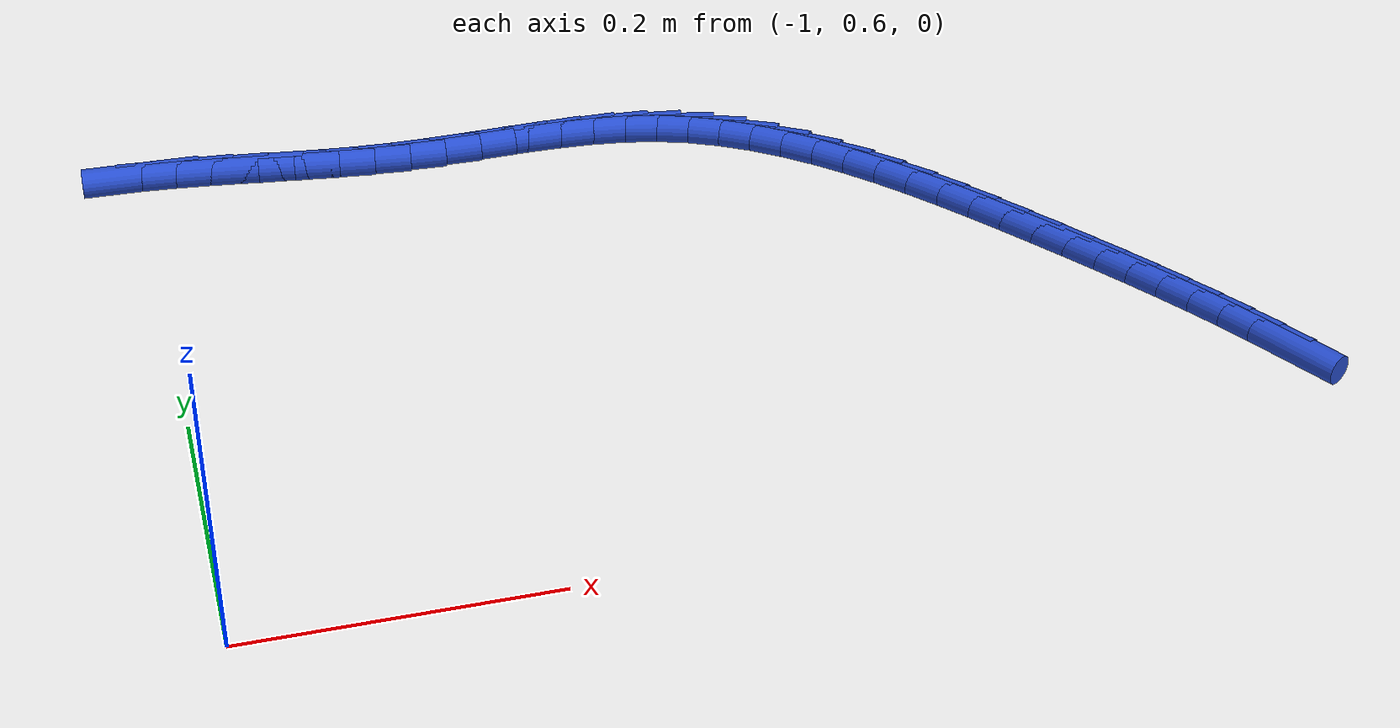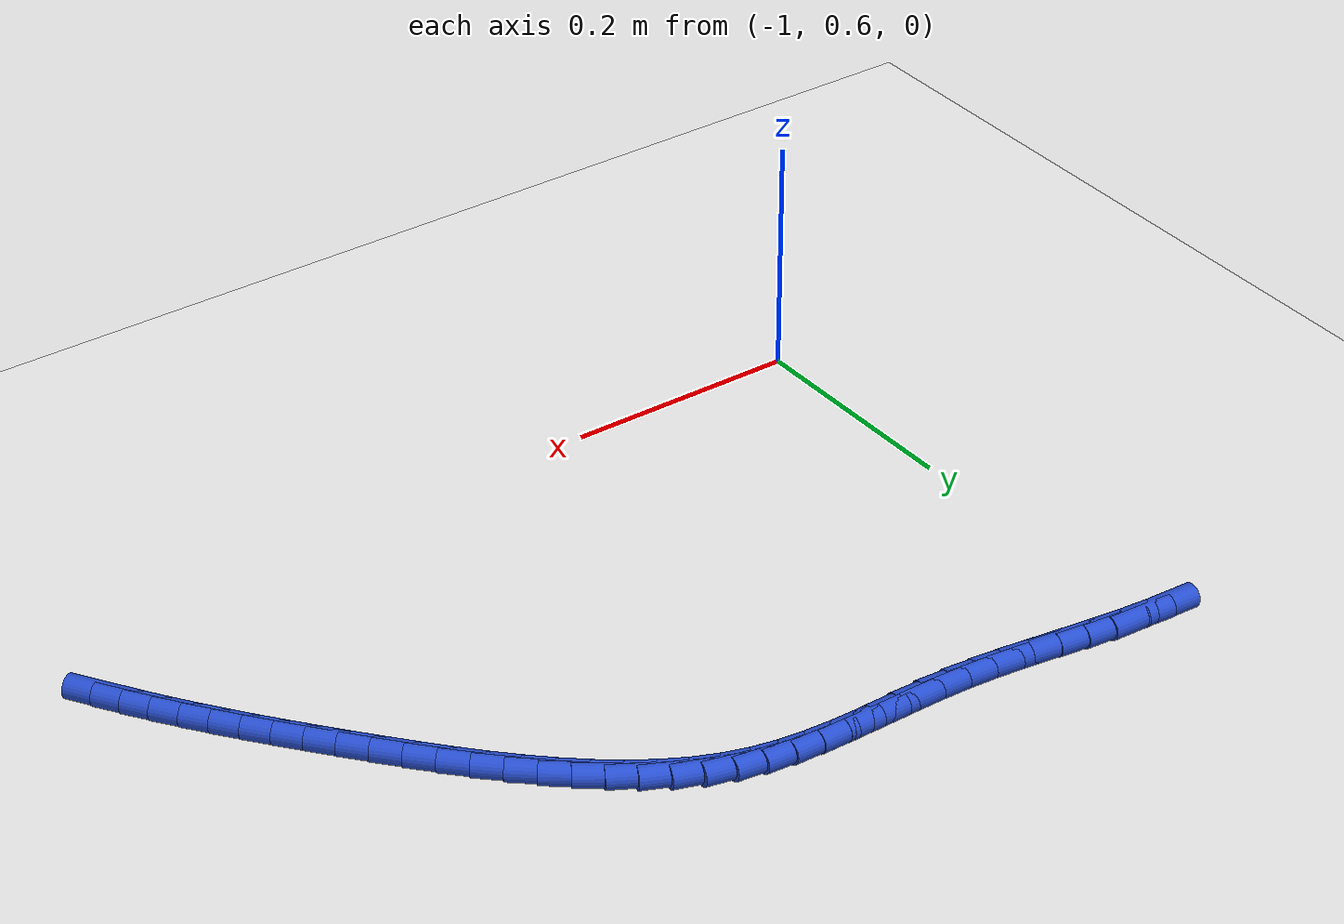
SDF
<sdf version="1.6">
 <world name="default">
  <model name="ground_plane">
   <static>1</static>
   <link name="link">
    <collision name="collision">
     <geometry><plane><normal>0 0 1</normal><size>100 100</size></plane></geometry>
     <surface><friction><ode><mu>100</mu><mu2>50</mu2></ode></friction></surface>
    </collision>
    <visual name="visual">
     <cast_shadows>0</cast_shadows>
     <geometry><plane><normal>0 0 1</normal><size>100 100</size></plane></geometry>
     <material>
      <script><uri>file://media/materials/scripts/gazebo.material</uri><name>Gazebo/WhiteGlow</name></script>
     </material>
    </visual>
   </link>
  </model>
  <model name="line">
   <link name="link_33">
    <pose>-0.3097885913738731 0.7030657781156517 0.01 0 1.57 -1.002941183865782</pose>
    <collision name="collision">
     <geometry><cylinder><radius>0.01</radius><length>0.08</length></cylinder></geometry>
    </collision>
    <visual name="visual">
     <material>
      <script><name>Gazebo/Blue</name><uri>file://media/materials/scripts/gazebo.material</uri></script>
     </material>
     <geometry><cylinder><radius>0.01</radius><length>0.08</length></cylinder></geometry>
    </visual>
   </link>
   <link name="link_34">
    <pose>-0.32237110842961614 0.7227892409744509 0.01 0 1.57 -0.9790506794853427</pose>
    <collision name="collision">
     <geometry><cylinder><radius>0.01</radius><length>0.08</length></cylinder></geometry>
    </collision>
    <visual name="visual">
     <material>
      <script><name>Gazebo/Blue</name><uri>file://media/materials/scripts/gazebo.material</uri></script>
     </material>
     <geometry><cylinder><radius>0.01</radius><length>0.08</length></cylinder></geometry>
    </visual>
   </link>
   <link name="link_35">
    <pose>-0.3354563526271495 0.7422588146901686 0.01 0 1.57 -0.957547431150505</pose>
    <collision name="collision">
     <geometry><cylinder><radius>0.01</radius><length>0.08</length></cylinder></geometry>
    </collision>
    <visual name="visual">
     <material>
      <script><name>Gazebo/Blue</name><uri>file://media/materials/scripts/gazebo.material</uri></script>
     </material>
     <geometry><cylinder><radius>0.01</radius><length>0.08</length></cylinder></geometry>
    </visual>
   </link>
   <link name="link_36">
    <pose>-0.34901754179778793 0.7615282771529474 0.01 0 1.57 -0.9384990975968414</pose>
    <collision name="collision">
     <geometry><cylinder><radius>0.01</radius><length>0.08</length></cylinder></geometry>
    </collision>
    <visual name="visual">
     <material>
      <script><name>Gazebo/Blue</name><uri>file://media/materials/scripts/gazebo.material</uri></script>
     </material>
     <geometry><cylinder><radius>0.01</radius><length>0.08</length></cylinder></geometry>
    </visual>
   </link>
   <link name="link_37">
    <pose>-0.3630278937728464 0.7806514062529294 0.01 0 1.57 -0.9219426738590444</pose>
    <collision name="collision">
     <geometry><cylinder><radius>0.01</radius><length>0.08</length></cylinder></geometry>
    </collision>
    <visual name="visual">
     <material>
      <script><name>Gazebo/Blue</name><uri>file://media/materials/scripts/gazebo.material</uri></script>
     </material>
     <geometry><cylinder><radius>0.01</radius><length>0.08</length></cylinder></geometry>
    </visual>
   </link>
   <link name="link_38">
    <pose>-0.3774606263836391 0.7996819798802559 0.01 0 1.57 -0.9078879918364929</pose>
    <collision name="collision">
     <geometry><cylinder><radius>0.01</radius><length>0.08</length></cylinder></geometry>
    </collision>
    <visual name="visual">
     <material>
      <script><name>Gazebo/Blue</name><uri>file://media/materials/scripts/gazebo.material</uri></script>
     </material>
     <geometry><cylinder><radius>0.01</radius><length>0.08</length></cylinder></geometry>
    </visual>
   </link>
   <link name="link_39">
    <pose>-0.392288957461481 0.8186737759250691 0.01 0 1.57 -0.8963213827988467</pose>
    <collision name="collision">
     <geometry><cylinder><radius>0.01</radius><length>0.08</length></cylinder></geometry>
    </collision>
    <visual name="visual">
     <material>
      <script><name>Gazebo/Blue</name><uri>file://media/materials/scripts/gazebo.material</uri></script>
     </material>
     <geometry><cylinder><radius>0.01</radius><length>0.08</length></cylinder></geometry>
    </visual>
   </link>
   <link name="link_40">
    <pose>-0.40748610483768677 0.8376805722775111 0.01 0 1.57 -0.8872092454545766</pose>
    <collision name="collision">
     <geometry><cylinder><radius>0.01</radius><length>0.08</length></cylinder></geometry>
    </collision>
    <visual name="visual">
     <material>
      <script><name>Gazebo/Blue</name><uri>file://media/materials/scripts/gazebo.material</uri></script>
     </material>
     <geometry><cylinder><radius>0.01</radius><length>0.08</length></cylinder></geometry>
    </visual>
   </link>
   <link name="link_41">
    <pose>-0.42302528634357095 0.8567561468277236 0.01 0 1.57 -0.8797433199122261</pose>
    <collision name="collision">
     <geometry><cylinder><radius>0.01</radius><length>0.08</length></cylinder></geometry>
    </collision>
    <visual name="visual">
     <material>
      <script><name>Gazebo/Blue</name><uri>file://media/materials/scripts/gazebo.material</uri></script>
     </material>
     <geometry><cylinder><radius>0.01</radius><length>0.08</length></cylinder></geometry>
    </visual>
   </link>
   <link name="link_42">
    <pose>-0.4388851222924729 0.8759311966488835 0.01 0 1.57 -0.8683331694966139</pose>
    <collision name="collision">
     <geometry><cylinder><radius>0.01</radius><length>0.08</length></cylinder></geometry>
    </collision>
    <visual name="visual">
     <material>
      <script><name>Gazebo/Blue</name><uri>file://media/materials/scripts/gazebo.material</uri></script>
     </material>
     <geometry><cylinder><radius>0.01</radius><length>0.08</length></cylinder></geometry>
    </visual>
   </link>
   <link name="link_43">
    <pose>-0.45508385393727074 0.8950671477922065 0.01 0 1.57 -0.8504401230253983</pose>
    <collision name="collision">
     <geometry><cylinder><radius>0.01</radius><length>0.08</length></cylinder></geometry>
    </collision>
    <visual name="visual">
     <material>
      <script><name>Gazebo/Blue</name><uri>file://media/materials/scripts/gazebo.material</uri></script>
     </material>
     <geometry><cylinder><radius>0.01</radius><length>0.08</length></cylinder></geometry>
    </visual>
   </link>
   <link name="link_44">
    <pose>-0.47165736141588394 0.9139500683761572 0.01 0 1.57 -0.8258104740875727</pose>
    <collision name="collision">
     <geometry><cylinder><radius>0.01</radius><length>0.08</length></cylinder></geometry>
    </collision>
    <visual name="visual">
     <material>
      <script><name>Gazebo/Blue</name><uri>file://media/materials/scripts/gazebo.material</uri></script>
     </material>
     <geometry><cylinder><radius>0.01</radius><length>0.08</length></cylinder></geometry>
    </visual>
   </link>
   <link name="link_45">
    <pose>-0.4886416055428532 0.9323656818475615 0.01 0 1.57 -0.7940169877237658</pose>
    <collision name="collision">
     <geometry><cylinder><radius>0.01</radius><length>0.08</length></cylinder></geometry>
    </collision>
    <visual name="visual">
     <material>
      <script><name>Gazebo/Blue</name><uri>file://media/materials/scripts/gazebo.material</uri></script>
     </material>
     <geometry><cylinder><radius>0.01</radius><length>0.08</length></cylinder></geometry>
    </visual>
   </link>
   <link name="link_46">
    <pose>-0.5060725471327198 0.9500997116532452 0.01 0 1.57 -0.754461978098026</pose>
    <collision name="collision">
     <geometry><cylinder><radius>0.01</radius><length>0.08</length></cylinder></geometry>
    </collision>
    <visual name="visual">
     <material>
      <script><name>Gazebo/Blue</name><uri>file://media/materials/scripts/gazebo.material</uri></script>
     </material>
     <geometry><cylinder><radius>0.01</radius><length>0.08</length></cylinder></geometry>
    </visual>
   </link>
   <link name="link_47">
    <pose>-0.5239861470000243 0.9669378812400347 0.01 0 1.57 -0.7064011280596505</pose>
    <collision name="collision">
     <geometry><cylinder><radius>0.01</radius><length>0.08</length></cylinder></geometry>
    </collision>
    <visual name="visual">
     <material>
      <script><name>Gazebo/Blue</name><uri>file://media/materials/scripts/gazebo.material</uri></script>
     </material>
     <geometry><cylinder><radius>0.01</radius><length>0.08</length></cylinder></geometry>
    </visual>
   </link>
   <link name="link_48">
    <pose>-0.5424183659593079 0.9826659140547551 0.01 0 1.57 -0.6489902450254843</pose>
    <collision name="collision">
     <geometry><cylinder><radius>0.01</radius><length>0.08</length></cylinder></geometry>
    </collision>
    <visual name="visual">
     <material>
      <script><name>Gazebo/Blue</name><uri>file://media/materials/scripts/gazebo.material</uri></script>
     </material>
     <geometry><cylinder><radius>0.01</radius><length>0.08</length></cylinder></geometry>
    </visual>
   </link>
   <link name="link_49">
    <pose>-0.5614051648251114 0.9970695335442326 0.01 0 1.57 -0.5813737888308368</pose>
    <collision name="collision">
     <geometry><cylinder><radius>0.01</radius><length>0.08</length></cylinder></geometry>
    </collision>
    <visual name="visual">
     <material>
      <script><name>Gazebo/Blue</name><uri>file://media/materials/scripts/gazebo.material</uri></script>
     </material>
     <geometry><cylinder><radius>0.01</radius><length>0.08</length></cylinder></geometry>
    </visual>
   </link>
   <link name="link_50">
    <pose>-0.580982504411976 1.0099344631552933 0.01 0 1.57 -0.5028375322086273</pose>
    <collision name="collision">
     <geometry><cylinder><radius>0.01</radius><length>0.08</length></cylinder></geometry>
    </collision>
    <visual name="visual">
     <material>
      <script><name>Gazebo/Blue</name><uri>file://media/materials/scripts/gazebo.material</uri></script>
     </material>
     <geometry><cylinder><radius>0.01</radius><length>0.08</length></cylinder></geometry>
    </visual>
   </link>
   <link name="link_51">
    <pose>-0.6011863455344423 1.0210464263347632 0.01 0 1.57 -0.41304229700559014</pose>
    <collision name="collision">
     <geometry><cylinder><radius>0.01</radius><length>0.08</length></cylinder></geometry>
    </collision>
    <visual name="visual">
     <material>
      <script><name>Gazebo/Blue</name><uri>file://media/materials/scripts/gazebo.material</uri></script>
     </material>
     <geometry><cylinder><radius>0.01</radius><length>0.08</length></cylinder></geometry>
    </visual>
   </link>
   <link name="link_52">
    <pose>-0.6220526490070517 1.030191146529468 0.01 0 1.57 -0.3123310548744103</pose>
    <collision name="collision">
     <geometry><cylinder><radius>0.01</radius><length>0.08</length></cylinder></geometry>
    </collision>
    <visual name="visual">
     <material>
      <script><name>Gazebo/Blue</name><uri>file://media/materials/scripts/gazebo.material</uri></script>
     </material>
     <geometry><cylinder><radius>0.01</radius><length>0.08</length></cylinder></geometry>
    </visual>
   </link>
   <link name="link_53">
    <pose>-0.6436173672672828 1.0371543870281485 0.01 0 1.57 -0.20803774556017843</pose>
    <collision name="collision">
     <geometry><cylinder><radius>0.01</radius><length>0.08</length></cylinder></geometry>
    </collision>
    <visual name="visual">
     <material>
      <script><name>Gazebo/Blue</name><uri>file://media/materials/scripts/gazebo.material</uri></script>
     </material>
     <geometry><cylinder><radius>0.01</radius><length>0.08</length></cylinder></geometry>
    </visual>
   </link>
   <link name="link_54">
    <pose>-0.6658883416980451 1.0418556093421882 0.01 0 1.57 -0.1212937171855763</pose>
    <collision name="collision">
     <geometry><cylinder><radius>0.01</radius><length>0.08</length></cylinder></geometry>
    </collision>
    <visual name="visual">
     <material>
      <script><name>Gazebo/Blue</name><uri>file://media/materials/scripts/gazebo.material</uri></script>
     </material>
     <geometry><cylinder><radius>0.01</radius><length>0.08</length></cylinder></geometry>
    </visual>
   </link>
   <link name="link_55">
    <pose>-0.6887825904872125 1.044646236712495 0.01 0 1.57 -0.05624902360117668</pose>
    <collision name="collision">
     <geometry><cylinder><radius>0.01</radius><length>0.08</length></cylinder></geometry>
    </collision>
    <visual name="visual">
     <material>
      <script><name>Gazebo/Blue</name><uri>file://media/materials/scripts/gazebo.material</uri></script>
     </material>
     <geometry><cylinder><radius>0.01</radius><length>0.08</length></cylinder></geometry>
    </visual>
   </link>
   <link name="link_56">
    <pose>-0.7121988235532964 1.045964767842309 0.01 0 1.57 -0.011952883846207981</pose>
    <collision name="collision">
     <geometry><cylinder><radius>0.01</radius><length>0.08</length></cylinder></geometry>
    </collision>
    <visual name="visual">
     <material>
      <script><name>Gazebo/Blue</name><uri>file://media/materials/scripts/gazebo.material</uri></script>
     </material>
     <geometry><cylinder><radius>0.01</radius><length>0.08</length></cylinder></geometry>
    </visual>
   </link>
   <link name="link_57">
    <pose>-0.7360357508148085 1.046249701434869 0.01 0 1.57 0.012839209454055252</pose>
    <collision name="collision">
     <geometry><cylinder><radius>0.01</radius><length>0.08</length></cylinder></geometry>
    </collision>
    <visual name="visual">
     <material>
      <script><name>Gazebo/Blue</name><uri>file://media/materials/scripts/gazebo.material</uri></script>
     </material>
     <geometry><cylinder><radius>0.01</radius><length>0.08</length></cylinder></geometry>
    </visual>
   </link>
   <link name="link_58">
    <pose>-0.7601920821902609 1.0459395361934167 0.01 0 1.57 0.01914744399157125</pose>
    <collision name="collision">
     <geometry><cylinder><radius>0.01</radius><length>0.08</length></cylinder></geometry>
    </collision>
    <visual name="visual">
     <material>
      <script><name>Gazebo/Blue</name><uri>file://media/materials/scripts/gazebo.material</uri></script>
     </material>
     <geometry><cylinder><radius>0.01</radius><length>0.08</length></cylinder></geometry>
    </visual>
   </link>
   <link name="link_59">
    <pose>-0.7845665275981649 1.0454727708211913 0.01 0 1.57 0.007548130158248473</pose>
    <collision name="collision">
     <geometry><cylinder><radius>0.01</radius><length>0.08</length></cylinder></geometry>
    </collision>
    <visual name="visual">
     <material>
      <script><name>Gazebo/Blue</name><uri>file://media/materials/scripts/gazebo.material</uri></script>
     </material>
     <geometry><cylinder><radius>0.01</radius><length>0.08</length></cylinder></geometry>
    </visual>
   </link>
   <link name="link_60">
    <pose>-0.8090577969570325 1.045287904021433 0.01 0 1.57 -0.021848841422465175</pose>
    <collision name="collision">
     <geometry><cylinder><radius>0.01</radius><length>0.08</length></cylinder></geometry>
    </collision>
    <visual name="visual">
     <material>
      <script><name>Gazebo/Blue</name><uri>file://media/materials/scripts/gazebo.material</uri></script>
     </material>
     <geometry><cylinder><radius>0.01</radius><length>0.08</length></cylinder></geometry>
    </visual>
   </link>
   <link name="link_61">
    <pose>-0.8335646001853753 1.0458234344973811 0.01 0 1.57 -0.06450331492207673</pose>
    <collision name="collision">
     <geometry><cylinder><radius>0.01</radius><length>0.08</length></cylinder></geometry>
    </collision>
    <visual name="visual">
     <material>
      <script><name>Gazebo/Blue</name><uri>file://media/materials/scripts/gazebo.material</uri></script>
     </material>
     <geometry><cylinder><radius>0.01</radius><length>0.08</length></cylinder></geometry>
    </visual>
   </link>
   <link name="link_62">
    <pose>-0.8579981906236264 1.0474016715286494 0.01 0 1.57 -0.09980188473148736</pose>
    <collision name="collision">
     <geometry><cylinder><radius>0.01</radius><length>0.08</length></cylinder></geometry>
    </collision>
    <visual name="visual">
     <material>
      <script><name>Gazebo/Blue</name><uri>file://media/materials/scripts/gazebo.material</uri></script>
     </material>
     <geometry><cylinder><radius>0.01</radius><length>0.08</length></cylinder></geometry>
    </visual>
   </link>
   <link name="link_63">
    <pose>-0.8823245922556289 1.0498375852070811 0.01 0 1.57 -0.12212069396544734</pose>
    <collision name="collision">
     <geometry><cylinder><radius>0.01</radius><length>0.08</length></cylinder></geometry>
    </collision>
    <visual name="visual">
     <material>
      <script><name>Gazebo/Blue</name><uri>file://media/materials/scripts/gazebo.material</uri></script>
     </material>
     <geometry><cylinder><radius>0.01</radius><length>0.08</length></cylinder></geometry>
    </visual>
   </link>
   <link name="link_64">
    <pose>-0.9065247743418238 1.0528077078772458 0.01 0 1.57 -0.13147046762292627</pose>
    <collision name="collision">
     <geometry><cylinder><radius>0.01</radius><length>0.08</length></cylinder></geometry>
    </collision>
    <visual name="visual">
     <material>
      <script><name>Gazebo/Blue</name><uri>file://media/materials/scripts/gazebo.material</uri></script>
     </material>
     <geometry><cylinder><radius>0.01</radius><length>0.08</length></cylinder></geometry>
    </visual>
   </link>
   <link name="link_65">
    <pose>-0.9305797064842276 1.0559885687197166 0.01 0 1.57 -0.1277246841388082</pose>
    <collision name="collision">
     <geometry><cylinder><radius>0.01</radius><length>0.08</length></cylinder></geometry>
    </collision>
    <visual name="visual">
     <material>
      <script><name>Gazebo/Blue</name><uri>file://media/materials/scripts/gazebo.material</uri></script>
     </material>
     <geometry><cylinder><radius>0.01</radius><length>0.08</length></cylinder></geometry>
    </visual>
   </link>
   <link name="link_66">
    <pose>-0.9544703582848556 1.0590566969150663 0.01 0 1.57 -0.1105645420652227</pose>
    <collision name="collision">
     <geometry><cylinder><radius>0.01</radius><length>0.08</length></cylinder></geometry>
    </collision>
    <visual name="visual">
     <material>
      <script><name>Gazebo/Blue</name><uri>file://media/materials/scripts/gazebo.material</uri></script>
     </material>
     <geometry><cylinder><radius>0.01</radius><length>0.08</length></cylinder></geometry>
    </visual>
   </link>
   <link name="link_67">
    <pose>-0.9781776993457239 1.0616886216438692 0.01 0 1.57 -0.07948546546250446</pose>
    <collision name="collision">
     <geometry><cylinder><radius>0.01</radius><length>0.08</length></cylinder></geometry>
    </collision>
    <visual name="visual">
     <material>
      <script><name>Gazebo/Blue</name><uri>file://media/materials/scripts/gazebo.material</uri></script>
     </material>
     <geometry><cylinder><radius>0.01</radius><length>0.08</length></cylinder></geometry>
    </visual>
   </link>
   <link name="link_68">
    <pose>-1.001682699268848 1.063560872086698 0.01 0 1.57 -0.03387802838676995</pose>
    <collision name="collision">
     <geometry><cylinder><radius>0.01</radius><length>0.08</length></cylinder></geometry>
    </collision>
    <visual name="visual">
     <material>
      <script><name>Gazebo/Blue</name><uri>file://media/materials/scripts/gazebo.material</uri></script>
     </material>
     <geometry><cylinder><radius>0.01</radius><length>0.08</length></cylinder></geometry>
    </visual>
   </link>
  </model>
 </world>
</sdf>
